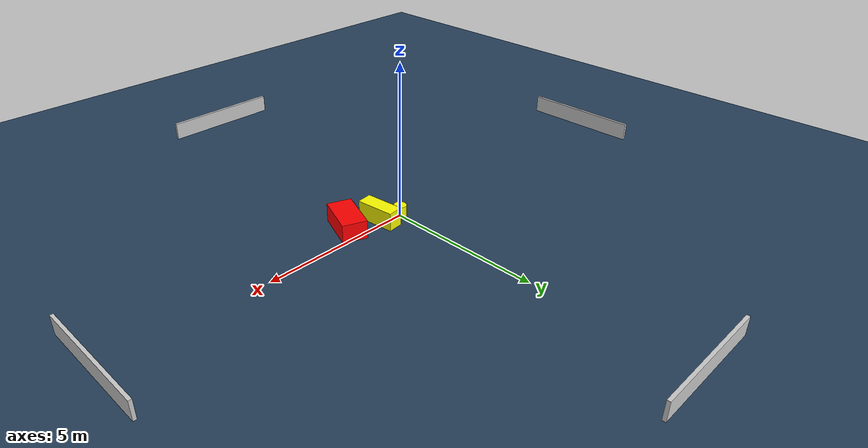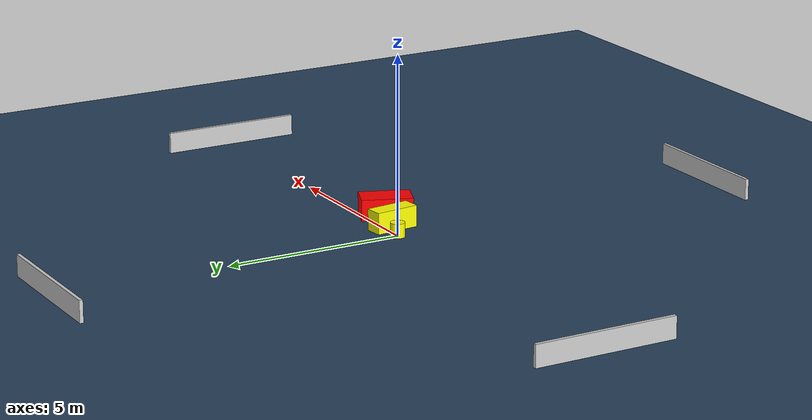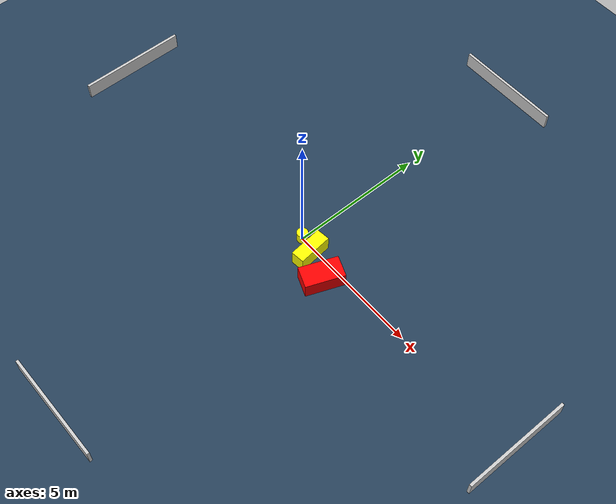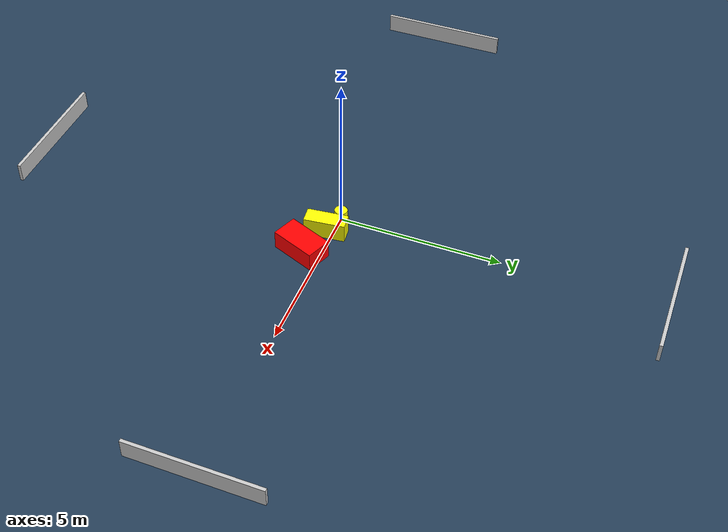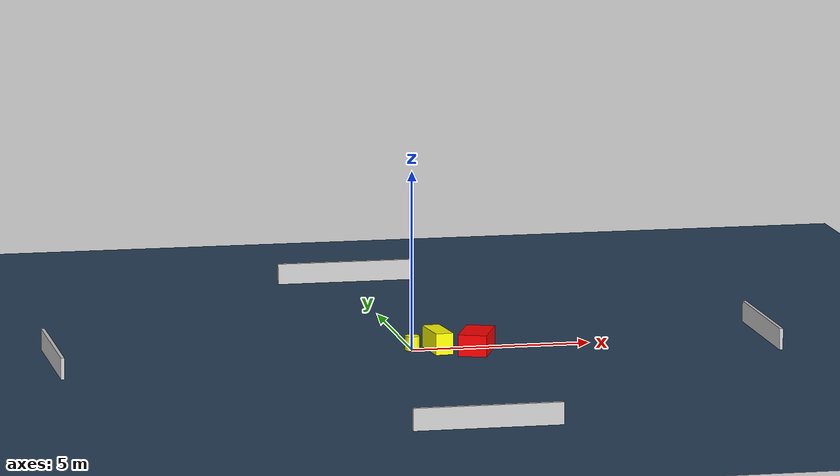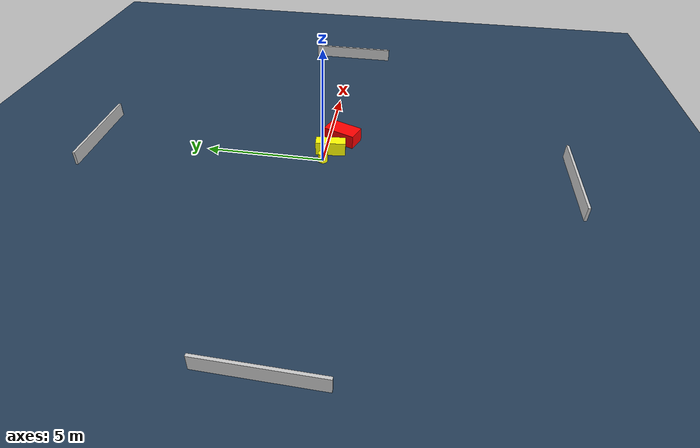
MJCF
<?xml version="1.0" ?>
<mujoco model="generated_environment">
  <option timestep="0.01" integrator="RK4" cone="elliptic"/>
  <default>
    <geom density="1"/>
  </default>
  <asset>
    <texture builtin="gradient" height="3072" name="skybox" rgb1="0.3 0.5 0.7" rgb2="0 0 0" type="skybox" width="512"/>
    <texture builtin="checker" height="300" name="groundplane" rgb1="0.2 0.3 0.4" rgb2="0.1 0.2 0.3" type="2d" width="300"/>
    <material name="groundplane" reflectance="0.2" texrepeat="5 5" texture="groundplane"/>
  </asset>
  <worldbody>
    <light dir="0 0 -1" directional="true" pos="0 0 1.5"/>
    <geom condim="3" friction="0.5 0.005 0.001" material="groundplane" name="floor" pos="0 0 0" size="0 0 0.05" type="plane"/>
    <body name="walls">
      <geom name="wall_1" condim="4" pos="-10.0 0.0 0.3" rgba="0.800000011920929 0.800000011920929 0.800000011920929 1.0" size="0.05 2.0 0.3" type="box"/>
      <geom name="wall_2" condim="4" pos="10.0 0.0 0.3" rgba="0.800000011920929 0.800000011920929 0.800000011920929 1.0" size="0.05 2.0 0.3" type="box"/>
      <geom name="wall_3" condim="4" pos="0.0 -10.0 0.3" rgba="0.800000011920929 0.800000011920929 0.800000011920929 1.0" size="2.0 0.05 0.3" type="box"/>
      <geom name="wall_4" condim="4" pos="0.0 10.0 0.3" rgba="0.800000011920929 0.800000011920929 0.800000011920929 1.0" size="2.0 0.05 0.3" type="box"/>
    </body>
    <body name="robot">
      <joint name="joint_x" type="slide" pos="0 0 0" axis="1 0 0"/>
      <joint name="joint_y" type="slide" pos="0 0 0" axis="0 1 0"/>
      <geom name="robot" type="cylinder" pos="0.0 0.0 0.2" size="0.2 0.2 0.0" mass="5.0" friction="1.0 0.005 0.0001" condim="4" rgba="1.0 1.0 0.0 1.0"/>
    </body>
    <body name="obstacle_1_movable">
      <geom name="obstacle_1_movable" condim="4" pos="0.6730359768311934 -0.2175727936847612 0.3" euler="0 0 6.212715865298808" friction="0.0 0.005 0.001" rgba="1.0 1.0 0.0 1.0" size="0.24790849624345473 0.6305391537317361 0.3" type="box" mass="0.1"/>
      <joint type="free"/>
    </body>
    <body name="obstacle_2_static">
      <geom name="obstacle_2_static" condim="4" pos="1.6914819285125318 -0.5832556925152385 0.3" euler="0 0 158.4666865660188" friction="0.0 0.005 0.001" rgba="1.0 0.0 0.0 1.0" size="0.39550555026802625 0.7126640914277254 0.3" type="box"/>
    </body>
  </worldbody>
  <actuator>
    <motor name="actuator_x" joint="joint_x" gear="1" ctrlrange="-1 1"/>
    <motor name="actuator_y" joint="joint_y" gear="1" ctrlrange="-1 1"/>
  </actuator>
</mujoco>
